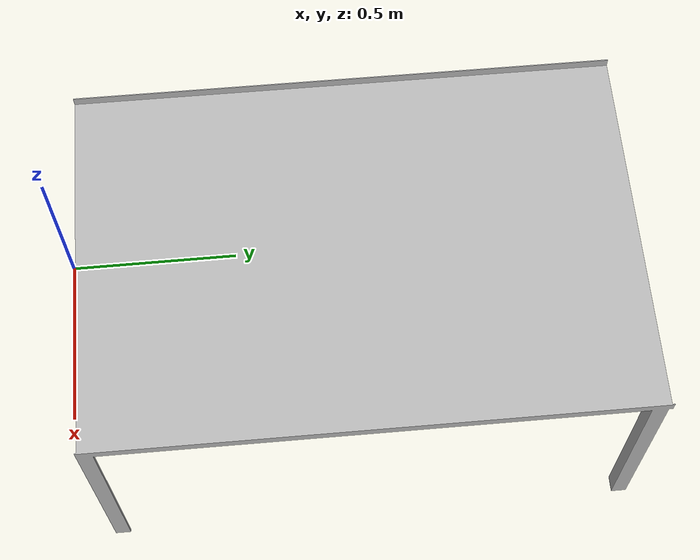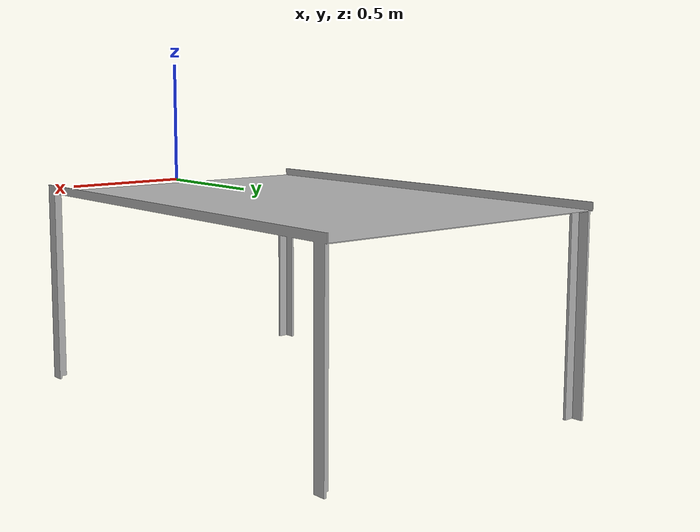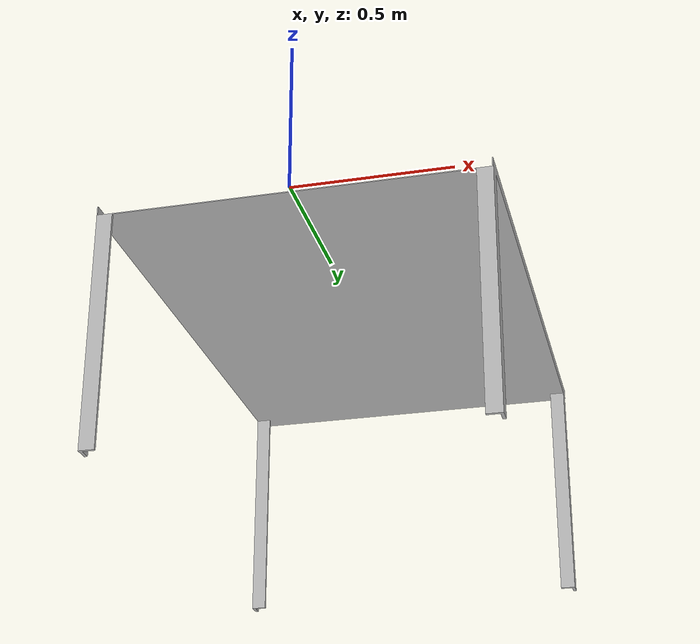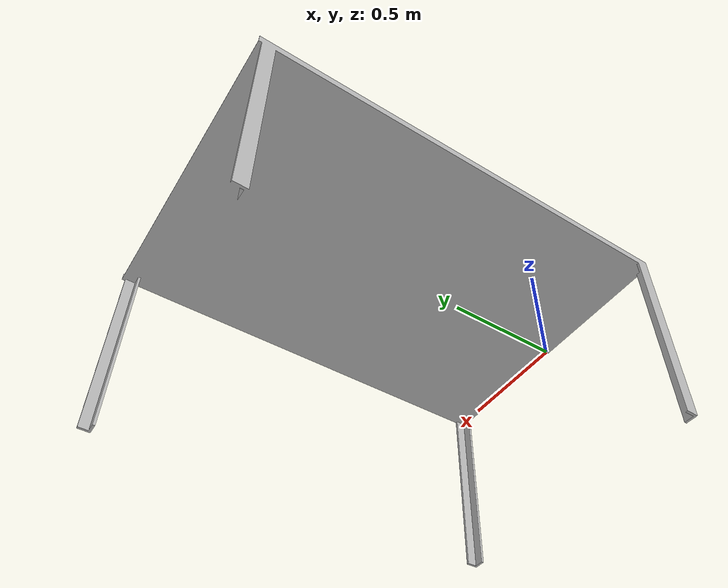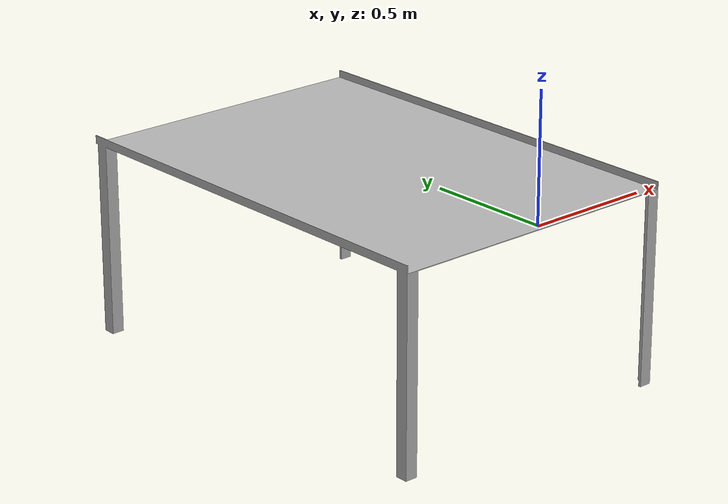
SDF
<?xml version="1.0"?>
<sdf version="1.9">
  <model name="bench">
    <static>true</static>

    <link name="bench_link">
      <visual name="bench_visual">
        <geometry>
          <mesh>
            <uri>model://bench/greenhouse_bench.stl</uri>
            <scale>0.001 0.001 0.001</scale>
          </mesh>
        </geometry>
      </visual>

      <collision name="bench_collision">
        <pose>0 1 0 0 0 0</pose>
        <geometry>
          <box>
            <size>1.2192 2 0.05</size>
          </box>
        </geometry>
      </collision>

    </link>
  </model>
</sdf>
